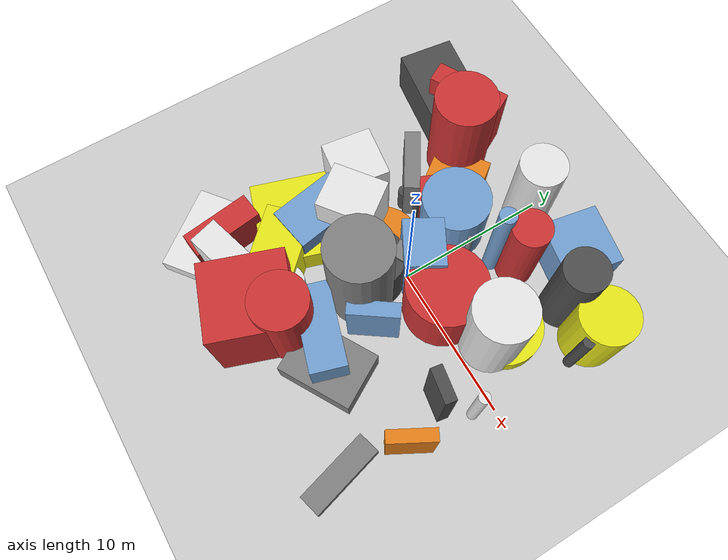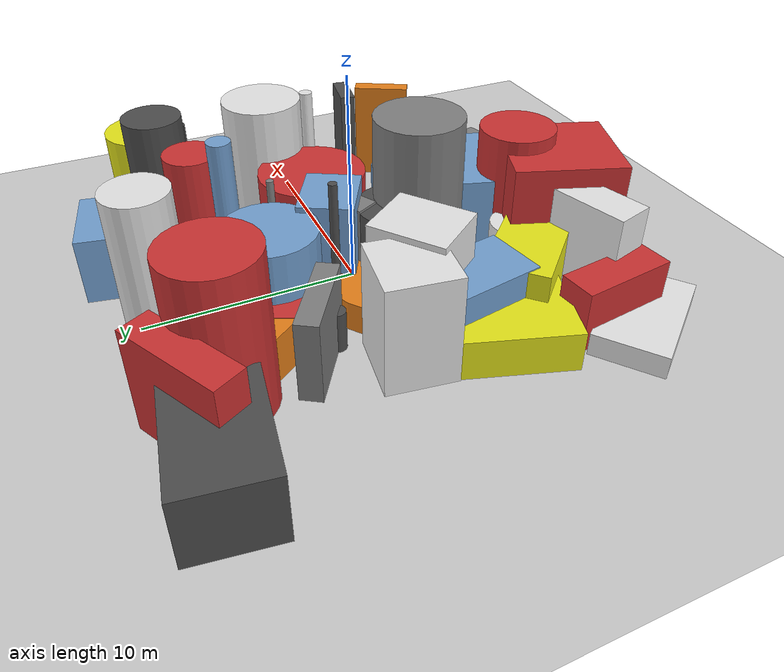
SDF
<?xml version='1.0'?>
<sdf version='1.6'>
  <world name='default'>
    <!-- Sun light -->
    <light name='sun' type='directional'>
      <cast_shadows>1</cast_shadows>
      <pose>0 0 10 0 0 0</pose>
      <diffuse>0.8 0.8 0.8 1</diffuse>
      <specular>0.2 0.2 0.2 1</specular>
      <attenuation>
        <range>1000</range>
        <constant>0.9</constant>
        <linear>0.01</linear>
        <quadratic>0.001</quadratic>
      </attenuation>
      <direction>-0.5 0.1 -0.9</direction>
    </light>

    <!-- Ground plane -->
    <model name='ground_plane'>
      <static>1</static>
      <link name='link'>
        <collision name='collision'>
          <geometry>
            <plane>
              <normal>0 0 1</normal>
              <size>100 100</size>
            </plane>
          </geometry>
          <surface>
            <contact>
              <collide_bitmask>65535</collide_bitmask>
              <ode/>
            </contact>
            <friction>
              <ode>
                <mu>100</mu>
                <mu2>50</mu2>
              </ode>
              <torsional><ode/></torsional>
            </friction>
            <bounce/>
          </surface>
          <max_contacts>10</max_contacts>
        </collision>
        <visual name='visual'>
          <cast_shadows>0</cast_shadows>
          <geometry>
            <plane>
              <normal>0 0 1</normal>
              <size>100 100</size>
            </plane>
          </geometry>
          <material>
            <script>
              <uri>file://media/materials/scripts/gazebo.material</uri>
              <n>Gazebo/Grey</n>
            </script>
          </material>
        </visual>
      </link>
    </model>

    <!-- Environment -->
    <magnetic_field>6e-06 2.3e-05 -4.2e-05</magnetic_field>
    <atmosphere type='adiabatic'/>
    <physics name='default_physics' default='0' type='ode'>
      <gravity>0 0 -9.8</gravity>
      <max_step_size>0.004</max_step_size>
      <real_time_factor>1</real_time_factor>
      <real_time_update_rate>250</real_time_update_rate>
    </physics>
    <scene>
      <ambient>0.4 0.4 0.4 1</ambient>
      <background>0.7 0.7 0.7 1</background>
      <shadows>1</shadows>
    </scene>
    <wind/>
    <spherical_coordinates>
      <surface_model>EARTH_WGS84</surface_model>
      <latitude_deg>0</latitude_deg>
      <longitude_deg>0</longitude_deg>
      <elevation>0</elevation>
      <heading_deg>0</heading_deg>
    </spherical_coordinates>

    <!-- ============ OBSTACLES (46) ============ -->
    <model name='obs_00'>
      <static>1</static>
      <link name='link'>
        <visual name='visual'>
          <geometry>
            <box>
              <size>3.6174 3.1595 2.1719</size>
            </box>
          </geometry>
          <material>
            <script>
              <n>Gazebo/Orange</n>
              <uri>file://media/materials/scripts/gazebo.material</uri>
            </script>
            <ambient>0.9 0.5 0.1 1</ambient>
          </material>
        </visual>
        <collision name='collision'>
          <geometry>
            <box>
              <size>3.6174 3.1595 2.1719</size>
            </box>
          </geometry>
          <max_contacts>10</max_contacts>
          <surface>
            <contact><ode/></contact>
            <bounce/>
            <friction>
              <ode><mu>1</mu><mu2>1</mu2></ode>
              <torsional><ode/></torsional>
            </friction>
          </surface>
        </collision>
      </link>
      <pose>-3.8122 6.1025 1.0859 0 0 0.6278</pose>
    </model>

    <model name='obs_01'>
      <static>1</static>
      <link name='link'>
        <visual name='visual'>
          <geometry>
            <box>
              <size>1.8375 5.7108 4.9185</size>
            </box>
          </geometry>
          <material>
            <script>
              <n>Gazebo/White</n>
              <uri>file://media/materials/scripts/gazebo.material</uri>
            </script>
            <ambient>0.9 0.9 0.9 1</ambient>
          </material>
        </visual>
        <collision name='collision'>
          <geometry>
            <box>
              <size>1.8375 5.7108 4.9185</size>
            </box>
          </geometry>
          <max_contacts>10</max_contacts>
          <surface>
            <contact><ode/></contact>
            <bounce/>
            <friction>
              <ode><mu>1</mu><mu2>1</mu2></ode>
              <torsional><ode/></torsional>
            </friction>
          </surface>
        </collision>
      </link>
      <pose>-4.5879 -9.1427 2.4592 0 0 1.8496</pose>
    </model>

    <model name='obs_02'>
      <static>1</static>
      <link name='link'>
        <visual name='visual'>
          <geometry>
            <cylinder>
              <radius>1.4653</radius>
              <length>6.7017</length>
            </cylinder>
          </geometry>
          <material>
            <script>
              <n>Gazebo/White</n>
              <uri>file://media/materials/scripts/gazebo.material</uri>
            </script>
            <ambient>0.9 0.9 0.9 1</ambient>
          </material>
        </visual>
        <collision name='collision'>
          <geometry>
            <cylinder>
              <radius>1.4653</radius>
              <length>6.7017</length>
            </cylinder>
          </geometry>
          <max_contacts>10</max_contacts>
          <surface>
            <contact><ode/></contact>
            <bounce/>
            <friction>
              <ode><mu>1</mu><mu2>1</mu2></ode>
              <torsional><ode/></torsional>
            </friction>
          </surface>
        </collision>
      </link>
      <pose>0.1615 9.0803 3.3509 0 0 0.2441</pose>
    </model>

    <model name='obs_03'>
      <static>1</static>
      <link name='link'>
        <visual name='visual'>
          <geometry>
            <cylinder>
              <radius>2.5538</radius>
              <length>4.3886</length>
            </cylinder>
          </geometry>
          <material>
            <script>
              <n>Gazebo/Red</n>
              <uri>file://media/materials/scripts/gazebo.material</uri>
            </script>
            <ambient>0.8 0.2 0.2 1</ambient>
          </material>
        </visual>
        <collision name='collision'>
          <geometry>
            <cylinder>
              <radius>2.5538</radius>
              <length>4.3886</length>
            </cylinder>
          </geometry>
          <max_contacts>10</max_contacts>
          <surface>
            <contact><ode/></contact>
            <bounce/>
            <friction>
              <ode><mu>1</mu><mu2>1</mu2></ode>
              <torsional><ode/></torsional>
            </friction>
          </surface>
        </collision>
      </link>
      <pose>2.9166 0.8007 2.1943 0 0 0.8503</pose>
    </model>

    <model name='obs_04'>
      <static>1</static>
      <link name='link'>
        <visual name='visual'>
          <geometry>
            <box>
              <size>2.9430 5.4728 3.2383</size>
            </box>
          </geometry>
          <material>
            <script>
              <n>Gazebo/Blue</n>
              <uri>file://media/materials/scripts/gazebo.material</uri>
            </script>
            <ambient>0.447 0.624 0.812 1</ambient>
          </material>
        </visual>
        <collision name='collision'>
          <geometry>
            <box>
              <size>2.9430 5.4728 3.2383</size>
            </box>
          </geometry>
          <max_contacts>10</max_contacts>
          <surface>
            <contact><ode/></contact>
            <bounce/>
            <friction>
              <ode><mu>1</mu><mu2>1</mu2></ode>
              <torsional><ode/></torsional>
            </friction>
          </surface>
        </collision>
      </link>
      <pose>-5.9361 -2.7014 1.6191 0 0 0.1742</pose>
    </model>

    <model name='obs_05'>
      <static>1</static>
      <link name='link'>
        <visual name='visual'>
          <geometry>
            <box>
              <size>1.1541 1.4917 4.0929</size>
            </box>
          </geometry>
          <material>
            <script>
              <n>Gazebo/Grey</n>
              <uri>file://media/materials/scripts/gazebo.material</uri>
            </script>
            <ambient>0.5 0.5 0.5 1</ambient>
          </material>
        </visual>
        <collision name='collision'>
          <geometry>
            <box>
              <size>1.1541 1.4917 4.0929</size>
            </box>
          </geometry>
          <max_contacts>10</max_contacts>
          <surface>
            <contact><ode/></contact>
            <bounce/>
            <friction>
              <ode><mu>1</mu><mu2>1</mu2></ode>
              <torsional><ode/></torsional>
            </friction>
          </surface>
        </collision>
      </link>
      <pose>-0.1445 -0.1478 2.0464 0 0 2.0507</pose>
    </model>

    <model name='obs_06'>
      <static>1</static>
      <link name='link'>
        <visual name='visual'>
          <geometry>
            <box>
              <size>2.6053 3.0581 2.2055</size>
            </box>
          </geometry>
          <material>
            <script>
              <n>Gazebo/Red</n>
              <uri>file://media/materials/scripts/gazebo.material</uri>
            </script>
            <ambient>0.8 0.2 0.2 1</ambient>
          </material>
        </visual>
        <collision name='collision'>
          <geometry>
            <box>
              <size>2.6053 3.0581 2.2055</size>
            </box>
          </geometry>
          <max_contacts>10</max_contacts>
          <surface>
            <contact><ode/></contact>
            <bounce/>
            <friction>
              <ode><mu>1</mu><mu2>1</mu2></ode>
              <torsional><ode/></torsional>
            </friction>
          </surface>
        </collision>
      </link>
      <pose>-3.2041 4.3899 1.1027 0 0 2.7346</pose>
    </model>

    <model name='obs_07'>
      <static>1</static>
      <link name='link'>
        <visual name='visual'>
          <geometry>
            <cylinder>
              <radius>1.9834</radius>
              <length>7.1745</length>
            </cylinder>
          </geometry>
          <material>
            <script>
              <n>Gazebo/Red</n>
              <uri>file://media/materials/scripts/gazebo.material</uri>
            </script>
            <ambient>0.8 0.2 0.2 1</ambient>
          </material>
        </visual>
        <collision name='collision'>
          <geometry>
            <cylinder>
              <radius>1.9834</radius>
              <length>7.1745</length>
            </cylinder>
          </geometry>
          <max_contacts>10</max_contacts>
          <surface>
            <contact><ode/></contact>
            <bounce/>
            <friction>
              <ode><mu>1</mu><mu2>1</mu2></ode>
              <torsional><ode/></torsional>
            </friction>
          </surface>
        </collision>
      </link>
      <pose>-5.7627 7.5238 3.5873 0 0 2.7658</pose>
    </model>

    <model name='obs_08'>
      <static>1</static>
      <link name='link'>
        <visual name='visual'>
          <geometry>
            <box>
              <size>1.4262 4.9073 4.7646</size>
            </box>
          </geometry>
          <material>
            <script>
              <n>Gazebo/Red</n>
              <uri>file://media/materials/scripts/gazebo.material</uri>
            </script>
            <ambient>0.8 0.2 0.2 1</ambient>
          </material>
        </visual>
        <collision name='collision'>
          <geometry>
            <box>
              <size>1.4262 4.9073 4.7646</size>
            </box>
          </geometry>
          <max_contacts>10</max_contacts>
          <surface>
            <contact><ode/></contact>
            <bounce/>
            <friction>
              <ode><mu>1</mu><mu2>1</mu2></ode>
              <torsional><ode/></torsional>
            </friction>
          </surface>
        </collision>
      </link>
      <pose>-7.6225 9.2410 2.3823 0 0 2.0651</pose>
    </model>

    <model name='obs_09'>
      <static>1</static>
      <link name='link'>
        <visual name='visual'>
          <geometry>
            <box>
              <size>3.3196 3.1975 5.1297</size>
            </box>
          </geometry>
          <material>
            <script>
              <n>Gazebo/White</n>
              <uri>file://media/materials/scripts/gazebo.material</uri>
            </script>
            <ambient>0.9 0.9 0.9 1</ambient>
          </material>
        </visual>
        <collision name='collision'>
          <geometry>
            <box>
              <size>3.3196 3.1975 5.1297</size>
            </box>
          </geometry>
          <max_contacts>10</max_contacts>
          <surface>
            <contact><ode/></contact>
            <bounce/>
            <friction>
              <ode><mu>1</mu><mu2>1</mu2></ode>
              <torsional><ode/></torsional>
            </friction>
          </surface>
        </collision>
      </link>
      <pose>-6.6970 0.1885 2.5649 0 0 3.0011</pose>
    </model>

    <model name='obs_10'>
      <static>1</static>
      <link name='link'>
        <visual name='visual'>
          <geometry>
            <cylinder>
              <radius>1.2279</radius>
              <length>6.4021</length>
            </cylinder>
          </geometry>
          <material>
            <script>
              <n>Gazebo/Red</n>
              <uri>file://media/materials/scripts/gazebo.material</uri>
            </script>
            <ambient>0.8 0.2 0.2 1</ambient>
          </material>
        </visual>
        <collision name='collision'>
          <geometry>
            <cylinder>
              <radius>1.2279</radius>
              <length>6.4021</length>
            </cylinder>
          </geometry>
          <max_contacts>10</max_contacts>
          <surface>
            <contact><ode/></contact>
            <bounce/>
            <friction>
              <ode><mu>1</mu><mu2>1</mu2></ode>
              <torsional><ode/></torsional>
            </friction>
          </surface>
        </collision>
      </link>
      <pose>3.0177 6.2842 3.2010 0 0 0.3720</pose>
    </model>

    <model name='obs_11'>
      <static>1</static>
      <link name='link'>
        <visual name='visual'>
          <geometry>
            <cylinder>
              <radius>2.1624</radius>
              <length>4.5445</length>
            </cylinder>
          </geometry>
          <material>
            <script>
              <n>Gazebo/Blue</n>
              <uri>file://media/materials/scripts/gazebo.material</uri>
            </script>
            <ambient>0.447 0.624 0.812 1</ambient>
          </material>
        </visual>
        <collision name='collision'>
          <geometry>
            <cylinder>
              <radius>2.1624</radius>
              <length>4.5445</length>
            </cylinder>
          </geometry>
          <max_contacts>10</max_contacts>
          <surface>
            <contact><ode/></contact>
            <bounce/>
            <friction>
              <ode><mu>1</mu><mu2>1</mu2></ode>
              <torsional><ode/></torsional>
            </friction>
          </surface>
        </collision>
      </link>
      <pose>-1.4296 4.2773 2.2723 0 0 2.1243</pose>
    </model>

    <model name='obs_12'>
      <static>1</static>
      <link name='link'>
        <visual name='visual'>
          <geometry>
            <cylinder>
              <radius>0.3495</radius>
              <length>4.6994</length>
            </cylinder>
          </geometry>
          <material>
            <script>
              <n>Gazebo/DarkGrey</n>
              <uri>file://media/materials/scripts/gazebo.material</uri>
            </script>
            <ambient>0.3 0.3 0.3 1</ambient>
          </material>
        </visual>
        <collision name='collision'>
          <geometry>
            <cylinder>
              <radius>0.3495</radius>
              <length>4.6994</length>
            </cylinder>
          </geometry>
          <max_contacts>10</max_contacts>
          <surface>
            <contact><ode/></contact>
            <bounce/>
            <friction>
              <ode><mu>1</mu><mu2>1</mu2></ode>
              <torsional><ode/></torsional>
            </friction>
          </surface>
        </collision>
      </link>
      <pose>9.9156 5.6169 2.3497 0 0 0.5976</pose>
    </model>

    <model name='obs_13'>
      <static>1</static>
      <link name='link'>
        <visual name='visual'>
          <geometry>
            <cylinder>
              <radius>2.0637</radius>
              <length>7.8760</length>
            </cylinder>
          </geometry>
          <material>
            <script>
              <n>Gazebo/Grey</n>
              <uri>file://media/materials/scripts/gazebo.material</uri>
            </script>
            <ambient>0.5 0.5 0.5 1</ambient>
          </material>
        </visual>
        <collision name='collision'>
          <geometry>
            <cylinder>
              <radius>2.0637</radius>
              <length>7.8760</length>
            </cylinder>
          </geometry>
          <max_contacts>10</max_contacts>
          <surface>
            <contact><ode/></contact>
            <bounce/>
            <friction>
              <ode><mu>1</mu><mu2>1</mu2></ode>
              <torsional><ode/></torsional>
            </friction>
          </surface>
        </collision>
      </link>
      <pose>-0.4978 -3.1148 3.9380 0 0 1.6213</pose>
    </model>

    <model name='obs_14'>
      <static>1</static>
      <link name='link'>
        <visual name='visual'>
          <geometry>
            <box>
              <size>2.0921 0.7241 5.9716</size>
            </box>
          </geometry>
          <material>
            <script>
              <n>Gazebo/DarkGrey</n>
              <uri>file://media/materials/scripts/gazebo.material</uri>
            </script>
            <ambient>0.3 0.3 0.3 1</ambient>
          </material>
        </visual>
        <collision name='collision'>
          <geometry>
            <box>
              <size>2.0921 0.7241 5.9716</size>
            </box>
          </geometry>
          <max_contacts>10</max_contacts>
          <surface>
            <contact><ode/></contact>
            <bounce/>
            <friction>
              <ode><mu>1</mu><mu2>1</mu2></ode>
              <torsional><ode/></torsional>
            </friction>
          </surface>
        </collision>
      </link>
      <pose>7.8348 -2.8415 2.9858 0 0 2.9736</pose>
    </model>

    <model name='obs_15'>
      <static>1</static>
      <link name='link'>
        <visual name='visual'>
          <geometry>
            <box>
              <size>3.7026 3.8902 3.2280</size>
            </box>
          </geometry>
          <material>
            <script>
              <n>Gazebo/Blue</n>
              <uri>file://media/materials/scripts/gazebo.material</uri>
            </script>
            <ambient>0.447 0.624 0.812 1</ambient>
          </material>
        </visual>
        <collision name='collision'>
          <geometry>
            <box>
              <size>3.7026 3.8902 3.2280</size>
            </box>
          </geometry>
          <max_contacts>10</max_contacts>
          <surface>
            <contact><ode/></contact>
            <bounce/>
            <friction>
              <ode><mu>1</mu><mu2>1</mu2></ode>
              <torsional><ode/></torsional>
            </friction>
          </surface>
        </collision>
      </link>
      <pose>4.5358 9.6766 1.6140 0 0 1.3829</pose>
    </model>

    <model name='obs_16'>
      <static>1</static>
      <link name='link'>
        <visual name='visual'>
          <geometry>
            <box>
              <size>4.8634 1.4569 1.2161</size>
            </box>
          </geometry>
          <material>
            <script>
              <n>Gazebo/Grey</n>
              <uri>file://media/materials/scripts/gazebo.material</uri>
            </script>
            <ambient>0.5 0.5 0.5 1</ambient>
          </material>
        </visual>
        <collision name='collision'>
          <geometry>
            <box>
              <size>4.8634 1.4569 1.2161</size>
            </box>
          </geometry>
          <max_contacts>10</max_contacts>
          <surface>
            <contact><ode/></contact>
            <bounce/>
            <friction>
              <ode><mu>1</mu><mu2>1</mu2></ode>
              <torsional><ode/></torsional>
            </friction>
          </surface>
        </collision>
      </link>
      <pose>8.4945 -9.8625 0.6081 0 0 1.8355</pose>
    </model>

    <model name='obs_17'>
      <static>1</static>
      <link name='link'>
        <visual name='visual'>
          <geometry>
            <box>
              <size>1.3134 0.7032 3.6548</size>
            </box>
          </geometry>
          <material>
            <script>
              <n>Gazebo/Orange</n>
              <uri>file://media/materials/scripts/gazebo.material</uri>
            </script>
            <ambient>0.9 0.5 0.1 1</ambient>
          </material>
        </visual>
        <collision name='collision'>
          <geometry>
            <box>
              <size>1.3134 0.7032 3.6548</size>
            </box>
          </geometry>
          <max_contacts>10</max_contacts>
          <surface>
            <contact><ode/></contact>
            <bounce/>
            <friction>
              <ode><mu>1</mu><mu2>1</mu2></ode>
              <torsional><ode/></torsional>
            </friction>
          </surface>
        </collision>
      </link>
      <pose>2.8128 7.3964 1.8274 0 0 2.1889</pose>
    </model>

    <model name='obs_18'>
      <static>1</static>
      <link name='link'>
        <visual name='visual'>
          <geometry>
            <box>
              <size>5.7672 5.6510 1.9063</size>
            </box>
          </geometry>
          <material>
            <script>
              <n>Gazebo/Yellow</n>
              <uri>file://media/materials/scripts/gazebo.material</uri>
            </script>
            <ambient>0.9 0.9 0.1 1</ambient>
          </material>
        </visual>
        <collision name='collision'>
          <geometry>
            <box>
              <size>5.7672 5.6510 1.9063</size>
            </box>
          </geometry>
          <max_contacts>10</max_contacts>
          <surface>
            <contact><ode/></contact>
            <bounce/>
            <friction>
              <ode><mu>1</mu><mu2>1</mu2></ode>
              <torsional><ode/></torsional>
            </friction>
          </surface>
        </collision>
      </link>
      <pose>-6.4829 -4.0885 0.9532 0 0 1.2596</pose>
    </model>

    <model name='obs_19'>
      <static>1</static>
      <link name='link'>
        <visual name='visual'>
          <geometry>
            <cylinder>
              <radius>1.9347</radius>
              <length>3.9765</length>
            </cylinder>
          </geometry>
          <material>
            <script>
              <n>Gazebo/DarkGrey</n>
              <uri>file://media/materials/scripts/gazebo.material</uri>
            </script>
            <ambient>0.3 0.3 0.3 1</ambient>
          </material>
        </visual>
        <collision name='collision'>
          <geometry>
            <cylinder>
              <radius>1.9347</radius>
              <length>3.9765</length>
            </cylinder>
          </geometry>
          <max_contacts>10</max_contacts>
          <surface>
            <contact><ode/></contact>
            <bounce/>
            <friction>
              <ode><mu>1</mu><mu2>1</mu2></ode>
              <torsional><ode/></torsional>
            </friction>
          </surface>
        </collision>
      </link>
      <pose>-0.9515 -1.9158 1.9883 0 0 1.7455</pose>
    </model>

    <model name='obs_20'>
      <static>1</static>
      <link name='link'>
        <visual name='visual'>
          <geometry>
            <box>
              <size>4.8722 3.5950 1.9094</size>
            </box>
          </geometry>
          <material>
            <script>
              <n>Gazebo/Grey</n>
              <uri>file://media/materials/scripts/gazebo.material</uri>
            </script>
            <ambient>0.5 0.5 0.5 1</ambient>
          </material>
        </visual>
        <collision name='collision'>
          <geometry>
            <box>
              <size>4.8722 3.5950 1.9094</size>
            </box>
          </geometry>
          <max_contacts>10</max_contacts>
          <surface>
            <contact><ode/></contact>
            <bounce/>
            <friction>
              <ode><mu>1</mu><mu2>1</mu2></ode>
              <torsional><ode/></torsional>
            </friction>
          </surface>
        </collision>
      </link>
      <pose>2.6967 -7.2846 0.9547 0 0 0.5193</pose>
    </model>

    <model name='obs_21'>
      <static>1</static>
      <link name='link'>
        <visual name='visual'>
          <geometry>
            <cylinder>
              <radius>1.3902</radius>
              <length>6.7709</length>
            </cylinder>
          </geometry>
          <material>
            <script>
              <n>Gazebo/DarkGrey</n>
              <uri>file://media/materials/scripts/gazebo.material</uri>
            </script>
            <ambient>0.3 0.3 0.3 1</ambient>
          </material>
        </visual>
        <collision name='collision'>
          <geometry>
            <cylinder>
              <radius>1.3902</radius>
              <length>6.7709</length>
            </cylinder>
          </geometry>
          <max_contacts>10</max_contacts>
          <surface>
            <contact><ode/></contact>
            <bounce/>
            <friction>
              <ode><mu>1</mu><mu2>1</mu2></ode>
              <torsional><ode/></torsional>
            </friction>
          </surface>
        </collision>
      </link>
      <pose>6.7175 7.2284 3.3855 0 0 0.0511</pose>
    </model>

    <model name='obs_22'>
      <static>1</static>
      <link name='link'>
        <visual name='visual'>
          <geometry>
            <box>
              <size>5.5482 3.2692 1.0882</size>
            </box>
          </geometry>
          <material>
            <script>
              <n>Gazebo/White</n>
              <uri>file://media/materials/scripts/gazebo.material</uri>
            </script>
            <ambient>0.9 0.9 0.9 1</ambient>
          </material>
        </visual>
        <collision name='collision'>
          <geometry>
            <box>
              <size>5.5482 3.2692 1.0882</size>
            </box>
          </geometry>
          <max_contacts>10</max_contacts>
          <surface>
            <contact><ode/></contact>
            <bounce/>
            <friction>
              <ode><mu>1</mu><mu2>1</mu2></ode>
              <torsional><ode/></torsional>
            </friction>
          </surface>
        </collision>
      </link>
      <pose>-8.9433 -9.9405 0.5441 0 0 2.2262</pose>
    </model>

    <model name='obs_23'>
      <static>1</static>
      <link name='link'>
        <visual name='visual'>
          <geometry>
            <cylinder>
              <radius>0.3503</radius>
              <length>5.4709</length>
            </cylinder>
          </geometry>
          <material>
            <script>
              <n>Gazebo/White</n>
              <uri>file://media/materials/scripts/gazebo.material</uri>
            </script>
            <ambient>0.9 0.9 0.9 1</ambient>
          </material>
        </visual>
        <collision name='collision'>
          <geometry>
            <cylinder>
              <radius>0.3503</radius>
              <length>5.4709</length>
            </cylinder>
          </geometry>
          <max_contacts>10</max_contacts>
          <surface>
            <contact><ode/></contact>
            <bounce/>
            <friction>
              <ode><mu>1</mu><mu2>1</mu2></ode>
              <torsional><ode/></torsional>
            </friction>
          </surface>
        </collision>
      </link>
      <pose>9.4991 -1.2725 2.7354 0 0 1.4251</pose>
    </model>

    <model name='obs_24'>
      <static>1</static>
      <link name='link'>
        <visual name='visual'>
          <geometry>
            <box>
              <size>2.9965 3.5431 5.4148</size>
            </box>
          </geometry>
          <material>
            <script>
              <n>Gazebo/White</n>
              <uri>file://media/materials/scripts/gazebo.material</uri>
            </script>
            <ambient>0.9 0.9 0.9 1</ambient>
          </material>
        </visual>
        <collision name='collision'>
          <geometry>
            <box>
              <size>2.9965 3.5431 5.4148</size>
            </box>
          </geometry>
          <max_contacts>10</max_contacts>
          <surface>
            <contact><ode/></contact>
            <bounce/>
            <friction>
              <ode><mu>1</mu><mu2>1</mu2></ode>
              <torsional><ode/></torsional>
            </friction>
          </surface>
        </collision>
      </link>
      <pose>-4.6382 -1.2327 2.7074 0 0 2.2129</pose>
    </model>

    <model name='obs_25'>
      <static>1</static>
      <link name='link'>
        <visual name='visual'>
          <geometry>
            <box>
              <size>4.0316 1.0101 3.7951</size>
            </box>
          </geometry>
          <material>
            <script>
              <n>Gazebo/Grey</n>
              <uri>file://media/materials/scripts/gazebo.material</uri>
            </script>
            <ambient>0.5 0.5 0.5 1</ambient>
          </material>
        </visual>
        <collision name='collision'>
          <geometry>
            <box>
              <size>4.0316 1.0101 3.7951</size>
            </box>
          </geometry>
          <max_contacts>10</max_contacts>
          <surface>
            <contact><ode/></contact>
            <bounce/>
            <friction>
              <ode><mu>1</mu><mu2>1</mu2></ode>
              <torsional><ode/></torsional>
            </friction>
          </surface>
        </collision>
      </link>
      <pose>-5.4484 3.6172 1.8976 0 0 2.5740</pose>
    </model>

    <model name='obs_26'>
      <static>1</static>
      <link name='link'>
        <visual name='visual'>
          <geometry>
            <box>
              <size>4.3442 0.9625 2.1877</size>
            </box>
          </geometry>
          <material>
            <script>
              <n>Gazebo/Yellow</n>
              <uri>file://media/materials/scripts/gazebo.material</uri>
            </script>
            <ambient>0.9 0.9 0.1 1</ambient>
          </material>
        </visual>
        <collision name='collision'>
          <geometry>
            <box>
              <size>4.3442 0.9625 2.1877</size>
            </box>
          </geometry>
          <max_contacts>10</max_contacts>
          <surface>
            <contact><ode/></contact>
            <bounce/>
            <friction>
              <ode><mu>1</mu><mu2>1</mu2></ode>
              <torsional><ode/></torsional>
            </friction>
          </surface>
        </collision>
      </link>
      <pose>-1.1050 5.2397 1.0939 0 0 2.1846</pose>
    </model>

    <model name='obs_27'>
      <static>1</static>
      <link name='link'>
        <visual name='visual'>
          <geometry>
            <box>
              <size>0.7544 2.8676 5.2129</size>
            </box>
          </geometry>
          <material>
            <script>
              <n>Gazebo/Orange</n>
              <uri>file://media/materials/scripts/gazebo.material</uri>
            </script>
            <ambient>0.9 0.5 0.1 1</ambient>
          </material>
        </visual>
        <collision name='collision'>
          <geometry>
            <box>
              <size>0.7544 2.8676 5.2129</size>
            </box>
          </geometry>
          <max_contacts>10</max_contacts>
          <surface>
            <contact><ode/></contact>
            <bounce/>
            <friction>
              <ode><mu>1</mu><mu2>1</mu2></ode>
              <torsional><ode/></torsional>
            </friction>
          </surface>
        </collision>
      </link>
      <pose>9.1669 -5.6051 2.6065 0 0 2.6419</pose>
    </model>

    <model name='obs_28'>
      <static>1</static>
      <link name='link'>
        <visual name='visual'>
          <geometry>
            <box>
              <size>4.8012 2.9641 3.1727</size>
            </box>
          </geometry>
          <material>
            <script>
              <n>Gazebo/Yellow</n>
              <uri>file://media/materials/scripts/gazebo.material</uri>
            </script>
            <ambient>0.9 0.9 0.1 1</ambient>
          </material>
        </visual>
        <collision name='collision'>
          <geometry>
            <box>
              <size>4.8012 2.9641 3.1727</size>
            </box>
          </geometry>
          <max_contacts>10</max_contacts>
          <surface>
            <contact><ode/></contact>
            <bounce/>
            <friction>
              <ode><mu>1</mu><mu2>1</mu2></ode>
              <torsional><ode/></torsional>
            </friction>
          </surface>
        </collision>
      </link>
      <pose>-4.9830 -6.3609 1.5864 0 0 2.3376</pose>
    </model>

    <model name='obs_29'>
      <static>1</static>
      <link name='link'>
        <visual name='visual'>
          <geometry>
            <cylinder>
              <radius>0.1633</radius>
              <length>3.9715</length>
            </cylinder>
          </geometry>
          <material>
            <script>
              <n>Gazebo/DarkGrey</n>
              <uri>file://media/materials/scripts/gazebo.material</uri>
            </script>
            <ambient>0.3 0.3 0.3 1</ambient>
          </material>
        </visual>
        <collision name='collision'>
          <geometry>
            <cylinder>
              <radius>0.1633</radius>
              <length>3.9715</length>
            </cylinder>
          </geometry>
          <max_contacts>10</max_contacts>
          <surface>
            <contact><ode/></contact>
            <bounce/>
            <friction>
              <ode><mu>1</mu><mu2>1</mu2></ode>
              <torsional><ode/></torsional>
            </friction>
          </surface>
        </collision>
      </link>
      <pose>8.2685 6.8821 1.9858 0 0 1.3298</pose>
    </model>

    <model name='obs_30'>
      <static>1</static>
      <link name='link'>
        <visual name='visual'>
          <geometry>
            <cylinder>
              <radius>2.4835</radius>
              <length>1.4437</length>
            </cylinder>
          </geometry>
          <material>
            <script>
              <n>Gazebo/Orange</n>
              <uri>file://media/materials/scripts/gazebo.material</uri>
            </script>
            <ambient>0.9 0.5 0.1 1</ambient>
          </material>
        </visual>
        <collision name='collision'>
          <geometry>
            <cylinder>
              <radius>2.4835</radius>
              <length>1.4437</length>
            </cylinder>
          </geometry>
          <max_contacts>10</max_contacts>
          <surface>
            <contact><ode/></contact>
            <bounce/>
            <friction>
              <ode><mu>1</mu><mu2>1</mu2></ode>
              <torsional><ode/></torsional>
            </friction>
          </surface>
        </collision>
      </link>
      <pose>-2.4690 -0.4345 0.7218 0 0 2.0882</pose>
    </model>

    <model name='obs_31'>
      <static>1</static>
      <link name='link'>
        <visual name='visual'>
          <geometry>
            <box>
              <size>2.2368 5.2463 4.2992</size>
            </box>
          </geometry>
          <material>
            <script>
              <n>Gazebo/Blue</n>
              <uri>file://media/materials/scripts/gazebo.material</uri>
            </script>
            <ambient>0.447 0.624 0.812 1</ambient>
          </material>
        </visual>
        <collision name='collision'>
          <geometry>
            <box>
              <size>2.2368 5.2463 4.2992</size>
            </box>
          </geometry>
          <max_contacts>10</max_contacts>
          <surface>
            <contact><ode/></contact>
            <bounce/>
            <friction>
              <ode><mu>1</mu><mu2>1</mu2></ode>
              <torsional><ode/></torsional>
            </friction>
          </surface>
        </collision>
      </link>
      <pose>1.1734 -6.8241 2.1496 0 0 1.2700</pose>
    </model>

    <model name='obs_32'>
      <static>1</static>
      <link name='link'>
        <visual name='visual'>
          <geometry>
            <box>
              <size>1.6947 4.5561 2.9522</size>
            </box>
          </geometry>
          <material>
            <script>
              <n>Gazebo/Red</n>
              <uri>file://media/materials/scripts/gazebo.material</uri>
            </script>
            <ambient>0.8 0.2 0.2 1</ambient>
          </material>
        </visual>
        <collision name='collision'>
          <geometry>
            <box>
              <size>1.6947 4.5561 2.9522</size>
            </box>
          </geometry>
          <max_contacts>10</max_contacts>
          <surface>
            <contact><ode/></contact>
            <bounce/>
            <friction>
              <ode><mu>1</mu><mu2>1</mu2></ode>
              <torsional><ode/></torsional>
            </friction>
          </surface>
        </collision>
      </link>
      <pose>-8.0266 -8.7806 1.4761 0 0 0.1313</pose>
    </model>

    <model name='obs_33'>
      <static>1</static>
      <link name='link'>
        <visual name='visual'>
          <geometry>
            <cylinder>
              <radius>0.3943</radius>
              <length>1.9396</length>
            </cylinder>
          </geometry>
          <material>
            <script>
              <n>Gazebo/DarkGrey</n>
              <uri>file://media/materials/scripts/gazebo.material</uri>
            </script>
            <ambient>0.3 0.3 0.3 1</ambient>
          </material>
        </visual>
        <collision name='collision'>
          <geometry>
            <cylinder>
              <radius>0.3943</radius>
              <length>1.9396</length>
            </cylinder>
          </geometry>
          <max_contacts>10</max_contacts>
          <surface>
            <contact><ode/></contact>
            <bounce/>
            <friction>
              <ode><mu>1</mu><mu2>1</mu2></ode>
              <torsional><ode/></torsional>
            </friction>
          </surface>
        </collision>
      </link>
      <pose>-4.5768 2.5550 0.9698 0 0 0.9601</pose>
    </model>

    <model name='obs_34'>
      <static>1</static>
      <link name='link'>
        <visual name='visual'>
          <geometry>
            <cylinder>
              <radius>0.1736</radius>
              <length>5.1660</length>
            </cylinder>
          </geometry>
          <material>
            <script>
              <n>Gazebo/Grey</n>
              <uri>file://media/materials/scripts/gazebo.material</uri>
            </script>
            <ambient>0.5 0.5 0.5 1</ambient>
          </material>
        </visual>
        <collision name='collision'>
          <geometry>
            <cylinder>
              <radius>0.1736</radius>
              <length>5.1660</length>
            </cylinder>
          </geometry>
          <max_contacts>10</max_contacts>
          <surface>
            <contact><ode/></contact>
            <bounce/>
            <friction>
              <ode><mu>1</mu><mu2>1</mu2></ode>
              <torsional><ode/></torsional>
            </friction>
          </surface>
        </collision>
      </link>
      <pose>1.3919 3.2741 2.5830 0 0 1.4565</pose>
    </model>

    <model name='obs_35'>
      <static>1</static>
      <link name='link'>
        <visual name='visual'>
          <geometry>
            <box>
              <size>0.9346 3.2032 4.2882</size>
            </box>
          </geometry>
          <material>
            <script>
              <n>Gazebo/Blue</n>
              <uri>file://media/materials/scripts/gazebo.material</uri>
            </script>
            <ambient>0.447 0.624 0.812 1</ambient>
          </material>
        </visual>
        <collision name='collision'>
          <geometry>
            <box>
              <size>0.9346 3.2032 4.2882</size>
            </box>
          </geometry>
          <max_contacts>10</max_contacts>
          <surface>
            <contact><ode/></contact>
            <bounce/>
            <friction>
              <ode><mu>1</mu><mu2>1</mu2></ode>
              <torsional><ode/></torsional>
            </friction>
          </surface>
        </collision>
      </link>
      <pose>1.8839 -3.6335 2.1441 0 0 2.5278</pose>
    </model>

    <model name='obs_36'>
      <static>1</static>
      <link name='link'>
        <visual name='visual'>
          <geometry>
            <box>
              <size>2.5442 3.0845 4.8101</size>
            </box>
          </geometry>
          <material>
            <script>
              <n>Gazebo/Blue</n>
              <uri>file://media/materials/scripts/gazebo.material</uri>
            </script>
            <ambient>0.447 0.624 0.812 1</ambient>
          </material>
        </visual>
        <collision name='collision'>
          <geometry>
            <box>
              <size>2.5442 3.0845 4.8101</size>
            </box>
          </geometry>
          <max_contacts>10</max_contacts>
          <surface>
            <contact><ode/></contact>
            <bounce/>
            <friction>
              <ode><mu>1</mu><mu2>1</mu2></ode>
              <torsional><ode/></torsional>
            </friction>
          </surface>
        </collision>
      </link>
      <pose>0.0555 0.9727 2.4050 0 0 1.0659</pose>
    </model>

    <model name='obs_37'>
      <static>1</static>
      <link name='link'>
        <visual name='visual'>
          <geometry>
            <cylinder>
              <radius>1.1584</radius>
              <length>2.7006</length>
            </cylinder>
          </geometry>
          <material>
            <script>
              <n>Gazebo/White</n>
              <uri>file://media/materials/scripts/gazebo.material</uri>
            </script>
            <ambient>0.9 0.9 0.9 1</ambient>
          </material>
        </visual>
        <collision name='collision'>
          <geometry>
            <cylinder>
              <radius>1.1584</radius>
              <length>2.7006</length>
            </cylinder>
          </geometry>
          <max_contacts>10</max_contacts>
          <surface>
            <contact><ode/></contact>
            <bounce/>
            <friction>
              <ode><mu>1</mu><mu2>1</mu2></ode>
              <torsional><ode/></torsional>
            </friction>
          </surface>
        </collision>
      </link>
      <pose>-2.7305 -7.0868 1.3503 0 0 3.1258</pose>
    </model>

    <model name='obs_38'>
      <static>1</static>
      <link name='link'>
        <visual name='visual'>
          <geometry>
            <box>
              <size>5.1740 4.8061 5.8226</size>
            </box>
          </geometry>
          <material>
            <script>
              <n>Gazebo/Red</n>
              <uri>file://media/materials/scripts/gazebo.material</uri>
            </script>
            <ambient>0.8 0.2 0.2 1</ambient>
          </material>
        </visual>
        <collision name='collision'>
          <geometry>
            <box>
              <size>5.1740 4.8061 5.8226</size>
            </box>
          </geometry>
          <max_contacts>10</max_contacts>
          <surface>
            <contact><ode/></contact>
            <bounce/>
            <friction>
              <ode><mu>1</mu><mu2>1</mu2></ode>
              <torsional><ode/></torsional>
            </friction>
          </surface>
        </collision>
      </link>
      <pose>-2.0902 -9.5912 2.9113 0 0 1.2279</pose>
    </model>

    <model name='obs_39'>
      <static>1</static>
      <link name='link'>
        <visual name='visual'>
          <geometry>
            <cylinder>
              <radius>0.1986</radius>
              <length>6.2483</length>
            </cylinder>
          </geometry>
          <material>
            <script>
              <n>Gazebo/DarkGrey</n>
              <uri>file://media/materials/scripts/gazebo.material</uri>
            </script>
            <ambient>0.3 0.3 0.3 1</ambient>
          </material>
        </visual>
        <collision name='collision'>
          <geometry>
            <cylinder>
              <radius>0.1986</radius>
              <length>6.2483</length>
            </cylinder>
          </geometry>
          <max_contacts>10</max_contacts>
          <surface>
            <contact><ode/></contact>
            <bounce/>
            <friction>
              <ode><mu>1</mu><mu2>1</mu2></ode>
              <torsional><ode/></torsional>
            </friction>
          </surface>
        </collision>
      </link>
      <pose>-1.8213 1.4946 3.1242 0 0 2.4500</pose>
    </model>

    <model name='obs_40'>
      <static>1</static>
      <link name='link'>
        <visual name='visual'>
          <geometry>
            <cylinder>
              <radius>0.5438</radius>
              <length>7.2397</length>
            </cylinder>
          </geometry>
          <material>
            <script>
              <n>Gazebo/Blue</n>
              <uri>file://media/materials/scripts/gazebo.material</uri>
            </script>
            <ambient>0.447 0.624 0.812 1</ambient>
          </material>
        </visual>
        <collision name='collision'>
          <geometry>
            <cylinder>
              <radius>0.5438</radius>
              <length>7.2397</length>
            </cylinder>
          </geometry>
          <max_contacts>10</max_contacts>
          <surface>
            <contact><ode/></contact>
            <bounce/>
            <friction>
              <ode><mu>1</mu><mu2>1</mu2></ode>
              <torsional><ode/></torsional>
            </friction>
          </surface>
        </collision>
      </link>
      <pose>1.9162 5.2094 3.6199 0 0 0.8778</pose>
    </model>

    <model name='obs_41'>
      <static>1</static>
      <link name='link'>
        <visual name='visual'>
          <geometry>
            <cylinder>
              <radius>2.5549</radius>
              <length>1.1502</length>
            </cylinder>
          </geometry>
          <material>
            <script>
              <n>Gazebo/Yellow</n>
              <uri>file://media/materials/scripts/gazebo.material</uri>
            </script>
            <ambient>0.9 0.9 0.1 1</ambient>
          </material>
        </visual>
        <collision name='collision'>
          <geometry>
            <cylinder>
              <radius>2.5549</radius>
              <length>1.1502</length>
            </cylinder>
          </geometry>
          <max_contacts>10</max_contacts>
          <surface>
            <contact><ode/></contact>
            <bounce/>
            <friction>
              <ode><mu>1</mu><mu2>1</mu2></ode>
              <torsional><ode/></torsional>
            </friction>
          </surface>
        </collision>
      </link>
      <pose>6.0540 3.1361 0.5751 0 0 3.0821</pose>
    </model>

    <model name='obs_42'>
      <static>1</static>
      <link name='link'>
        <visual name='visual'>
          <geometry>
            <cylinder>
              <radius>1.7938</radius>
              <length>6.4483</length>
            </cylinder>
          </geometry>
          <material>
            <script>
              <n>Gazebo/Red</n>
              <uri>file://media/materials/scripts/gazebo.material</uri>
            </script>
            <ambient>0.8 0.2 0.2 1</ambient>
          </material>
        </visual>
        <collision name='collision'>
          <geometry>
            <cylinder>
              <radius>1.7938</radius>
              <length>6.4483</length>
            </cylinder>
          </geometry>
          <max_contacts>10</max_contacts>
          <surface>
            <contact><ode/></contact>
            <bounce/>
            <friction>
              <ode><mu>1</mu><mu2>1</mu2></ode>
              <torsional><ode/></torsional>
            </friction>
          </surface>
        </collision>
      </link>
      <pose>-0.6483 -8.2018 3.2242 0 0 1.5473</pose>
    </model>

    <model name='obs_43'>
      <static>1</static>
      <link name='link'>
        <visual name='visual'>
          <geometry>
            <cylinder>
              <radius>1.9074</radius>
              <length>6.9009</length>
            </cylinder>
          </geometry>
          <material>
            <script>
              <n>Gazebo/White</n>
              <uri>file://media/materials/scripts/gazebo.material</uri>
            </script>
            <ambient>0.9 0.9 0.9 1</ambient>
          </material>
        </visual>
        <collision name='collision'>
          <geometry>
            <cylinder>
              <radius>1.9074</radius>
              <length>6.9009</length>
            </cylinder>
          </geometry>
          <max_contacts>10</max_contacts>
          <surface>
            <contact><ode/></contact>
            <bounce/>
            <friction>
              <ode><mu>1</mu><mu2>1</mu2></ode>
              <torsional><ode/></torsional>
            </friction>
          </surface>
        </collision>
      </link>
      <pose>6.3497 2.0463 3.4504 0 0 1.0980</pose>
    </model>

    <model name='obs_44'>
      <static>1</static>
      <link name='link'>
        <visual name='visual'>
          <geometry>
            <cylinder>
              <radius>1.8225</radius>
              <length>5.0675</length>
            </cylinder>
          </geometry>
          <material>
            <script>
              <n>Gazebo/Yellow</n>
              <uri>file://media/materials/scripts/gazebo.material</uri>
            </script>
            <ambient>0.9 0.9 0.1 1</ambient>
          </material>
        </visual>
        <collision name='collision'>
          <geometry>
            <cylinder>
              <radius>1.8225</radius>
              <length>5.0675</length>
            </cylinder>
          </geometry>
          <max_contacts>10</max_contacts>
          <surface>
            <contact><ode/></contact>
            <bounce/>
            <friction>
              <ode><mu>1</mu><mu2>1</mu2></ode>
              <torsional><ode/></torsional>
            </friction>
          </surface>
        </collision>
      </link>
      <pose>9.3025 7.4606 2.5337 0 0 1.3939</pose>
    </model>

    <model name='obs_45'>
      <static>1</static>
      <link name='link'>
        <visual name='visual'>
          <geometry>
            <box>
              <size>5.2354 3.6691 3.1790</size>
            </box>
          </geometry>
          <material>
            <script>
              <n>Gazebo/DarkGrey</n>
              <uri>file://media/materials/scripts/gazebo.material</uri>
            </script>
            <ambient>0.3 0.3 0.3 1</ambient>
          </material>
        </visual>
        <collision name='collision'>
          <geometry>
            <box>
              <size>5.2354 3.6691 3.1790</size>
            </box>
          </geometry>
          <max_contacts>10</max_contacts>
          <surface>
            <contact><ode/></contact>
            <bounce/>
            <friction>
              <ode><mu>1</mu><mu2>1</mu2></ode>
              <torsional><ode/></torsional>
            </friction>
          </surface>
        </collision>
      </link>
      <pose>-9.9774 8.7836 1.5895 0 0 3.0021</pose>
    </model>

    <!-- GUI camera -->
    <gui fullscreen='0'>
      <camera name='user_camera'>
        <pose>-15 0 18 0 0.85 0.15</pose>
        <view_controller>orbit</view_controller>
        <projection_type>perspective</projection_type>
      </camera>
    </gui>
  </world>
</sdf>
